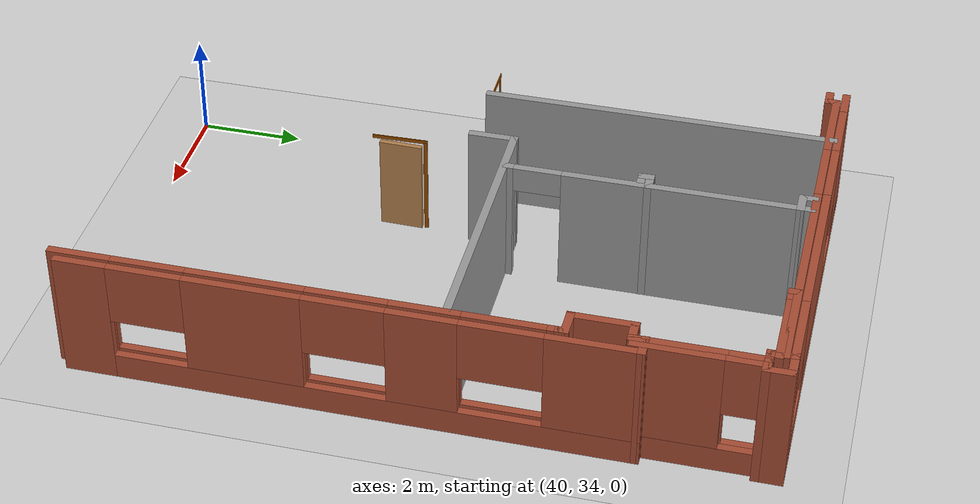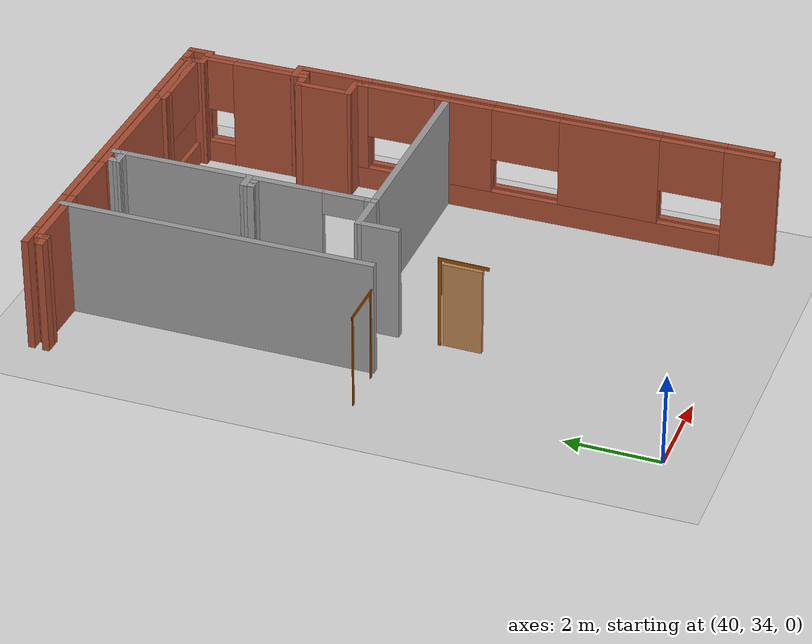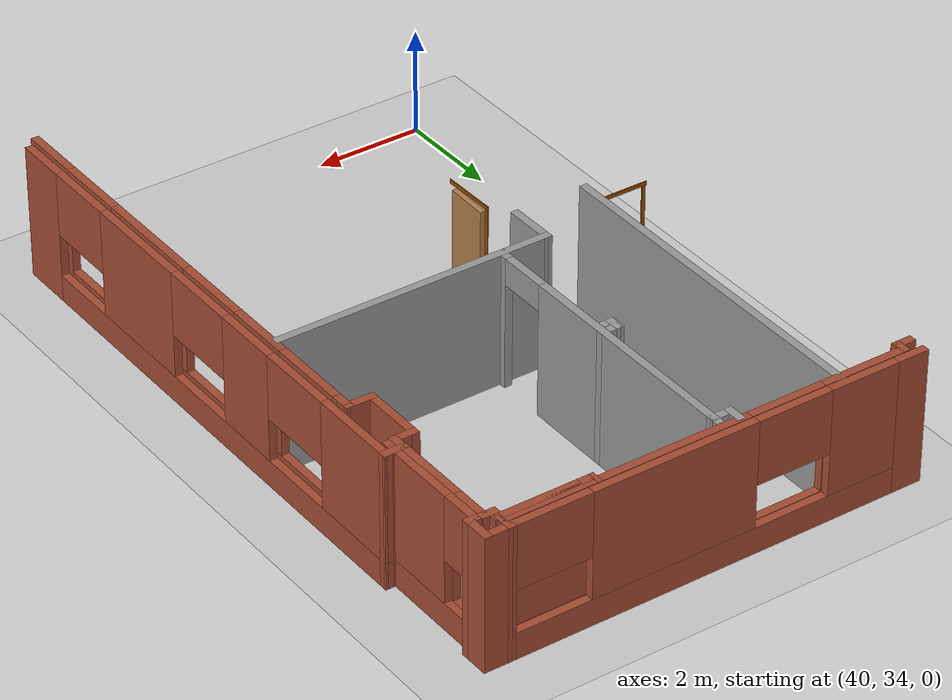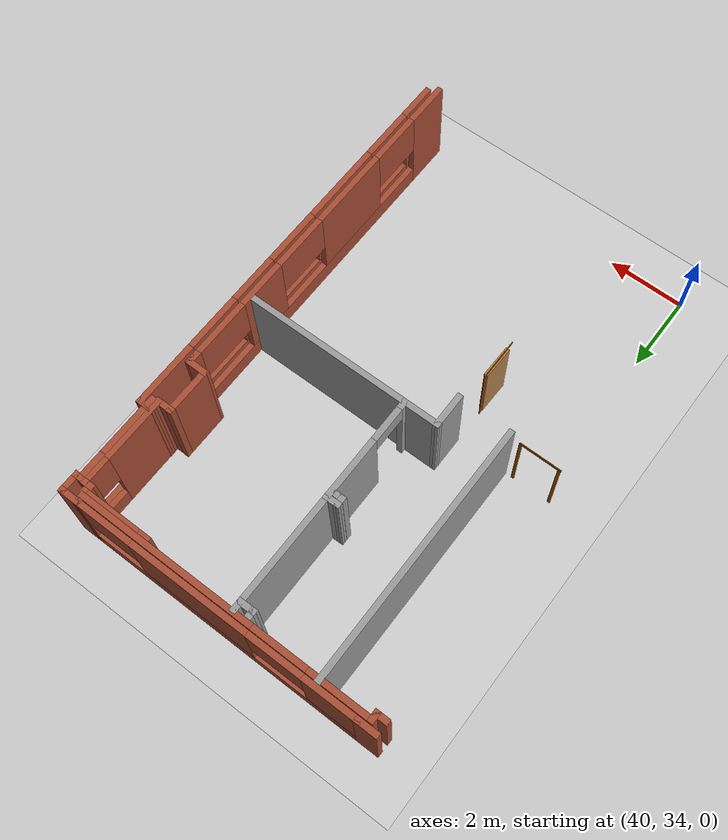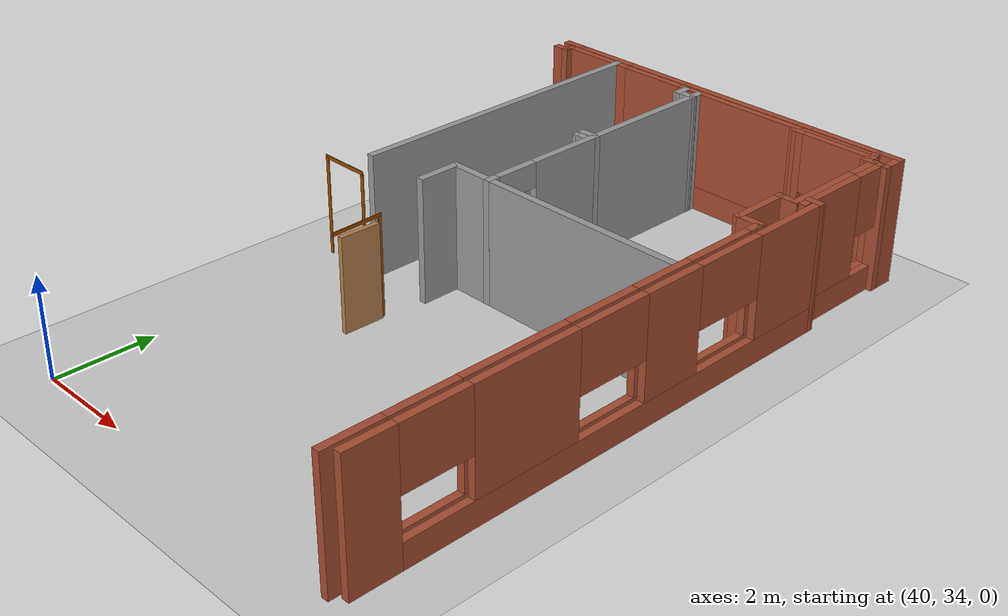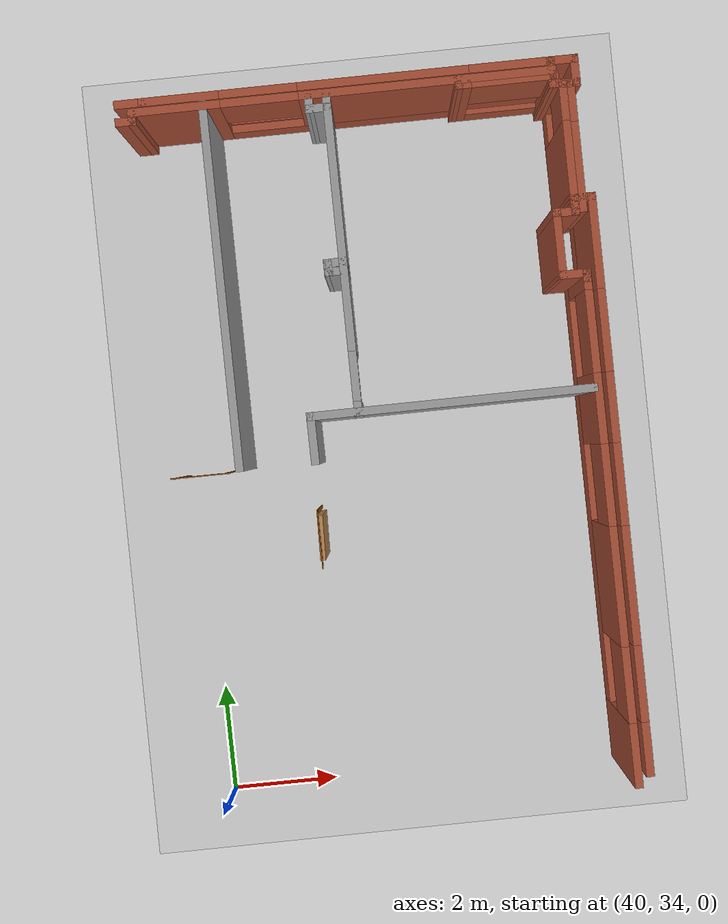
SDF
<sdf version="1.6">
 <world name="default">
  <model name="ground_plane">
   <static>1</static>
   <link name="link">
    <collision name="collision">
     <geometry><plane><normal>0 0 1</normal><size>100 100</size></plane></geometry>
     <surface><friction><ode><mu>100</mu><mu2>50</mu2></ode></friction></surface>
    </collision>
    <visual name="visual">
     <cast_shadows>0</cast_shadows>
     <geometry><plane><normal>0 0 1</normal><size>100 100</size></plane></geometry>
     <material>
      <script><uri>file://media/materials/scripts/gazebo.material</uri><name>Gazebo/Grey</name></script>
     </material>
    </visual>
   </link>
  </model>
  <model name="CVSSP">
   <pose>23.8714 24.094 0 0 -0 0</pose>
   <link name="Wall_246">
    <pose>23.6539 14.3878 0 0 -0 1.5708</pose>
    <visual name="Wall_246_Visual_0">
     <pose>-4.04048 0 1.25 0 -0 0</pose>
     <geometry><box><size>1.16905 0.15 2.5</size></box></geometry>
     <material>
      <script><uri>file://media/materials/scripts/gazebo.material</uri><name>Gazebo/Bricks</name></script>
      <ambient>1 1 1 1</ambient>
     </material>
    </visual>
    <collision name="Wall_246_Collision_0">
     <geometry><box><size>1.16905 0.15 2.5</size></box></geometry>
     <pose>-4.04048 0 1.25 0 -0 0</pose>
    </collision>
    <visual name="Wall_246_Visual_1">
     <pose>0.584524 0 0.25 0 -0 0</pose>
     <geometry><box><size>8.08095 0.15 0.5</size></box></geometry>
     <material>
      <script><uri>file://media/materials/scripts/gazebo.material</uri><name>Gazebo/Bricks</name></script>
      <ambient>1 1 1 1</ambient>
     </material>
    </visual>
    <collision name="Wall_246_Collision_1">
     <geometry><box><size>8.08095 0.15 0.5</size></box></geometry>
     <pose>0.584524 0 0.25 0 -0 0</pose>
    </collision>
    <visual name="Wall_246_Visual_2">
     <pose>-0.997265 0 1.5 0 -0 0</pose>
     <geometry><box><size>2.17318 0.15 2</size></box></geometry>
     <material>
      <script><uri>file://media/materials/scripts/gazebo.material</uri><name>Gazebo/Bricks</name></script>
      <ambient>1 1 1 1</ambient>
     </material>
    </visual>
    <collision name="Wall_246_Collision_2">
     <geometry><box><size>2.17318 0.15 2</size></box></geometry>
     <pose>-0.997265 0 1.5 0 -0 0</pose>
    </collision>
    <visual name="Wall_246_Visual_3">
     <pose>2.21429 0 1.5 0 -0 0</pose>
     <geometry><box><size>1.28036 0.15 2</size></box></geometry>
     <material>
      <script><uri>file://media/materials/scripts/gazebo.material</uri><name>Gazebo/Bricks</name></script>
      <ambient>1 1 1 1</ambient>
     </material>
    </visual>
    <collision name="Wall_246_Collision_3">
     <geometry><box><size>1.28036 0.15 2</size></box></geometry>
     <pose>2.21429 0 1.5 0 -0 0</pose>
    </collision>
    <visual name="Wall_246_Visual_4">
     <pose>4.48646 0 1.5 0 -0 0</pose>
     <geometry><box><size>0.27708 0.15 2</size></box></geometry>
     <material>
      <script><uri>file://media/materials/scripts/gazebo.material</uri><name>Gazebo/Bricks</name></script>
      <ambient>1 1 1 1</ambient>
     </material>
    </visual>
    <collision name="Wall_246_Collision_4">
     <geometry><box><size>0.27708 0.15 2</size></box></geometry>
     <pose>4.48646 0 1.5 0 -0 0</pose>
    </collision>
    <visual name="Wall_246_Visual_5">
     <pose>-2.7699 0 1.9 0 -0 0</pose>
     <geometry><box><size>1.3721 0.15 1.2</size></box></geometry>
     <material>
      <script><uri>file://media/materials/scripts/gazebo.material</uri><name>Gazebo/Bricks</name></script>
      <ambient>1 1 1 1</ambient>
     </material>
    </visual>
    <collision name="Wall_246_Collision_5">
     <geometry><box><size>1.3721 0.15 1.2</size></box></geometry>
     <pose>-2.7699 0 1.9 0 -0 0</pose>
    </collision>
    <visual name="Wall_246_Visual_6">
     <pose>0.831717 0 1.9 0 -0 0</pose>
     <geometry><box><size>1.48478 0.15 1.2</size></box></geometry>
     <material>
      <script><uri>file://media/materials/scripts/gazebo.material</uri><name>Gazebo/Bricks</name></script>
      <ambient>1 1 1 1</ambient>
     </material>
    </visual>
    <collision name="Wall_246_Collision_6">
     <geometry><box><size>1.48478 0.15 1.2</size></box></geometry>
     <pose>0.831717 0 1.9 0 -0 0</pose>
    </collision>
    <visual name="Wall_246_Visual_7">
     <pose>3.60119 0 1.9 0 -0 0</pose>
     <geometry><box><size>1.49345 0.15 1.2</size></box></geometry>
     <material>
      <script><uri>file://media/materials/scripts/gazebo.material</uri><name>Gazebo/Bricks</name></script>
      <ambient>1 1 1 1</ambient>
     </material>
    </visual>
    <collision name="Wall_246_Collision_7">
     <geometry><box><size>1.49345 0.15 1.2</size></box></geometry>
     <pose>3.60119 0 1.9 0 -0 0</pose>
    </collision>
   </link>
   <link name="Wall_248">
    <pose>23.8767 15.2054 0 0 -0 1.57026</pose>
    <visual name="Wall_248_Visual_0">
     <pose>-4.76522 0 1.25 0 -0 0</pose>
     <geometry><box><size>0.983202 0.15 2.5</size></box></geometry>
     <material>
      <script><uri>file://media/materials/scripts/gazebo.material</uri><name>Gazebo/Bricks</name></script>
      <ambient>1 1 1 1</ambient>
     </material>
    </visual>
    <collision name="Wall_248_Collision_0">
     <geometry><box><size>0.983202 0.15 2.5</size></box></geometry>
     <pose>-4.76522 0 1.25 0 -0 0</pose>
    </collision>
    <visual name="Wall_248_Visual_1">
     <pose>0.491601 0 0.25 0 -0 0</pose>
     <geometry><box><size>9.53043 0.15 0.5</size></box></geometry>
     <material>
      <script><uri>file://media/materials/scripts/gazebo.material</uri><name>Gazebo/Bricks</name></script>
      <ambient>1 1 1 1</ambient>
     </material>
    </visual>
    <collision name="Wall_248_Collision_1">
     <geometry><box><size>9.53043 0.15 0.5</size></box></geometry>
     <pose>0.491601 0 0.25 0 -0 0</pose>
    </collision>
    <visual name="Wall_248_Visual_2">
     <pose>-1.81497 0 1.5 0 -0 0</pose>
     <geometry><box><size>2.15587 0.15 2</size></box></geometry>
     <material>
      <script><uri>file://media/materials/scripts/gazebo.material</uri><name>Gazebo/Bricks</name></script>
      <ambient>1 1 1 1</ambient>
     </material>
    </visual>
    <collision name="Wall_248_Collision_2">
     <geometry><box><size>2.15587 0.15 2</size></box></geometry>
     <pose>-1.81497 0 1.5 0 -0 0</pose>
    </collision>
    <visual name="Wall_248_Visual_3">
     <pose>1.3966 0 1.5 0 -0 0</pose>
     <geometry><box><size>1.28045 0.15 2</size></box></geometry>
     <material>
      <script><uri>file://media/materials/scripts/gazebo.material</uri><name>Gazebo/Bricks</name></script>
      <ambient>1 1 1 1</ambient>
     </material>
    </visual>
    <collision name="Wall_248_Collision_3">
     <geometry><box><size>1.28045 0.15 2</size></box></geometry>
     <pose>1.3966 0 1.5 0 -0 0</pose>
    </collision>
    <visual name="Wall_248_Visual_4">
     <pose>4.39355 0 1.5 0 -0 0</pose>
     <geometry><box><size>1.72654 0.15 2</size></box></geometry>
     <material>
      <script><uri>file://media/materials/scripts/gazebo.material</uri><name>Gazebo/Bricks</name></script>
      <ambient>1 1 1 1</ambient>
     </material>
    </visual>
    <collision name="Wall_248_Collision_4">
     <geometry><box><size>1.72654 0.15 2</size></box></geometry>
     <pose>4.39355 0 1.5 0 -0 0</pose>
    </collision>
    <visual name="Wall_248_Visual_5">
     <pose>-3.58326 0 1.9 0 -0 0</pose>
     <geometry><box><size>1.38071 0.15 1.2</size></box></geometry>
     <material>
      <script><uri>file://media/materials/scripts/gazebo.material</uri><name>Gazebo/Bricks</name></script>
      <ambient>1 1 1 1</ambient>
     </material>
    </visual>
    <collision name="Wall_248_Collision_5">
     <geometry><box><size>1.38071 0.15 1.2</size></box></geometry>
     <pose>-3.58326 0 1.9 0 -0 0</pose>
    </collision>
    <visual name="Wall_248_Visual_6">
     <pose>0.009668 0 1.9 0 -0 0</pose>
     <geometry><box><size>1.49341 0.15 1.2</size></box></geometry>
     <material>
      <script><uri>file://media/materials/scripts/gazebo.material</uri><name>Gazebo/Bricks</name></script>
      <ambient>1 1 1 1</ambient>
     </material>
    </visual>
    <collision name="Wall_248_Collision_6">
     <geometry><box><size>1.49341 0.15 1.2</size></box></geometry>
     <pose>0.009668 0 1.9 0 -0 0</pose>
    </collision>
    <visual name="Wall_248_Visual_7">
     <pose>2.78355 0 1.9 0 -0 0</pose>
     <geometry><box><size>1.49345 0.15 1.2</size></box></geometry>
     <material>
      <script><uri>file://media/materials/scripts/gazebo.material</uri><name>Gazebo/Bricks</name></script>
      <ambient>1 1 1 1</ambient>
     </material>
    </visual>
    <collision name="Wall_248_Collision_7">
     <geometry><box><size>1.49345 0.15 1.2</size></box></geometry>
     <pose>2.78355 0 1.9 0 -0 0</pose>
    </collision>
   </link>
   <link name="Wall_249">
    <collision name="Wall_249_Collision">
     <geometry><box><size>0.472183 0.15 2.5</size></box></geometry>
     <pose>0 0 1.25 0 -0 0</pose>
    </collision>
    <visual name="Wall_249_Visual">
     <pose>0 0 1.25 0 -0 0</pose>
     <geometry><box><size>0.472183 0.15 2.5</size></box></geometry>
     <material>
      <script><uri>file://media/materials/scripts/gazebo.material</uri><name>Gazebo/Bricks</name></script>
      <ambient>1 1 1 1</ambient>
     </material>
    </visual>
    <pose>23.7184 20.3872 0 0 -0 3.14159</pose>
   </link>
   <link name="Wall_251">
    <collision name="Wall_251_Collision">
     <geometry><box><size>0.25 0.15 2.5</size></box></geometry>
     <pose>0 0 1.25 0 -0 0</pose>
    </collision>
    <visual name="Wall_251_Visual">
     <pose>0 0 1.25 0 -0 0</pose>
     <geometry><box><size>0.25 0.15 2.5</size></box></geometry>
     <material>
      <script><uri>file://media/materials/scripts/gazebo.material</uri><name>Gazebo/Bricks</name></script>
      <ambient>1 1 1 1</ambient>
     </material>
    </visual>
    <pose>23.6539 18.9878 0 0 -0 1.5708</pose>
   </link>
   <link name="Wall_252">
    <collision name="Wall_252_Collision">
     <geometry><box><size>0.578729 0.15 2.5</size></box></geometry>
     <pose>0 0 1.25 0 -0 0</pose>
    </collision>
    <visual name="Wall_252_Visual">
     <pose>0 0 1.25 0 -0 0</pose>
     <geometry><box><size>0.578729 0.15 2.5</size></box></geometry>
     <material>
      <script><uri>file://media/materials/scripts/gazebo.material</uri><name>Gazebo/Bricks</name></script>
      <ambient>1 1 1 1</ambient>
     </material>
    </visual>
    <pose>23.4395 19.0409 0 0 -0 3.12698</pose>
   </link>
   <link name="Wall_253">
    <collision name="Wall_253_Collision">
     <geometry><box><size>1.26972 0.15 2.5</size></box></geometry>
     <pose>0 0 1.25 0 -0 0</pose>
    </collision>
    <visual name="Wall_253_Visual">
     <pose>0 0 1.25 0 -0 0</pose>
     <geometry><box><size>1.26972 0.15 2.5</size></box></geometry>
     <material>
      <script><uri>file://media/materials/scripts/gazebo.material</uri><name>Gazebo/Bricks</name></script>
      <ambient>1 1 1 1</ambient>
     </material>
    </visual>
    <pose>23.2252 19.6039 0 0 -0 1.5708</pose>
   </link>
   <link name="Wall_254">
    <collision name="Wall_254_Collision">
     <geometry><box><size>0.488706 0.15 2.5</size></box></geometry>
     <pose>0 0 1.25 0 -0 0</pose>
    </collision>
    <visual name="Wall_254_Visual">
     <pose>0 0 1.25 0 -0 0</pose>
     <geometry><box><size>0.488706 0.15 2.5</size></box></geometry>
     <material>
      <script><uri>file://media/materials/scripts/gazebo.material</uri><name>Gazebo/Bricks</name></script>
      <ambient>1 1 1 1</ambient>
     </material>
    </visual>
    <pose>23.3945 20.1571 0 0 0 -0.000206</pose>
   </link>
   <link name="Wall_256">
    <collision name="Wall_256_Collision">
     <geometry><box><size>0.373652 0.15 2.5</size></box></geometry>
     <pose>0 0 1.25 0 -0 0</pose>
    </collision>
    <visual name="Wall_256_Visual">
     <pose>0 0 1.25 0 -0 0</pose>
     <geometry><box><size>0.373652 0.15 2.5</size></box></geometry>
     <material>
      <script><uri>file://media/materials/scripts/gazebo.material</uri><name>Gazebo/Bricks</name></script>
      <ambient>1 1 1 1</ambient>
     </material>
    </visual>
    <pose>23.5606 20.2755 0 0 -0 1.6002</pose>
   </link>
   <link name="Wall_260">
    <pose>23.5639 21.3143 0 0 -0 1.5708</pose>
    <visual name="Wall_260_Visual_0">
     <pose>-0.373491 0 1.25 0 -0 0</pose>
     <geometry><box><size>1.70433 0.15 2.5</size></box></geometry>
     <material>
      <script><uri>file://media/materials/scripts/gazebo.material</uri><name>Gazebo/Bricks</name></script>
      <ambient>1 1 1 1</ambient>
     </material>
    </visual>
    <collision name="Wall_260_Collision_0">
     <geometry><box><size>1.70433 0.15 2.5</size></box></geometry>
     <pose>-0.373491 0 1.25 0 -0 0</pose>
    </collision>
    <visual name="Wall_260_Visual_1">
     <pose>0.852167 0 0.25 0 -0 0</pose>
     <geometry><box><size>0.746982 0.15 0.5</size></box></geometry>
     <material>
      <script><uri>file://media/materials/scripts/gazebo.material</uri><name>Gazebo/Bricks</name></script>
      <ambient>1 1 1 1</ambient>
     </material>
    </visual>
    <collision name="Wall_260_Collision_1">
     <geometry><box><size>0.746982 0.15 0.5</size></box></geometry>
     <pose>0.852167 0 0.25 0 -0 0</pose>
    </collision>
    <visual name="Wall_260_Visual_2">
     <pose>1.14815 0 1.5 0 -0 0</pose>
     <geometry><box><size>0.155018 0.15 2</size></box></geometry>
     <material>
      <script><uri>file://media/materials/scripts/gazebo.material</uri><name>Gazebo/Bricks</name></script>
      <ambient>1 1 1 1</ambient>
     </material>
    </visual>
    <collision name="Wall_260_Collision_2">
     <geometry><box><size>0.155018 0.15 2</size></box></geometry>
     <pose>1.14815 0 1.5 0 -0 0</pose>
    </collision>
    <visual name="Wall_260_Visual_3">
     <pose>0.774658 0 1.9 0 -0 0</pose>
     <geometry><box><size>0.591964 0.15 1.2</size></box></geometry>
     <material>
      <script><uri>file://media/materials/scripts/gazebo.material</uri><name>Gazebo/Bricks</name></script>
      <ambient>1 1 1 1</ambient>
     </material>
    </visual>
    <collision name="Wall_260_Collision_3">
     <geometry><box><size>0.591964 0.15 1.2</size></box></geometry>
     <pose>0.774658 0 1.9 0 -0 0</pose>
    </collision>
   </link>
   <link name="Wall_261">
    <collision name="Wall_261_Collision">
     <geometry><box><size>0.320954 0.15 2.5</size></box></geometry>
     <pose>0 0 1.25 0 -0 0</pose>
    </collision>
    <visual name="Wall_261_Visual">
     <pose>0 0 1.25 0 -0 0</pose>
     <geometry><box><size>0.320954 0.15 2.5</size></box></geometry>
     <material>
      <script><uri>file://media/materials/scripts/gazebo.material</uri><name>Gazebo/Bricks</name></script>
      <ambient>1 1 1 1</ambient>
     </material>
    </visual>
    <pose>23.4784 22.465 0 0 -0 3.14159</pose>
   </link>
   <link name="Wall_262">
    <collision name="Wall_262_Collision">
     <geometry><box><size>0.564287 0.15 2.5</size></box></geometry>
     <pose>0 0 1.25 0 -0 0</pose>
    </collision>
    <visual name="Wall_262_Visual">
     <pose>0 0 1.25 0 -0 0</pose>
     <geometry><box><size>0.564287 0.15 2.5</size></box></geometry>
     <material>
      <script><uri>file://media/materials/scripts/gazebo.material</uri><name>Gazebo/Bricks</name></script>
      <ambient>1 1 1 1</ambient>
     </material>
    </visual>
    <pose>23.3897 22.6721 0 0 -0 1.58667</pose>
   </link>
   <link name="Wall_263">
    <collision name="Wall_263_Collision">
     <geometry><box><size>0.577386 0.15 2.5</size></box></geometry>
     <pose>0 0 1.25 0 -0 0</pose>
    </collision>
    <visual name="Wall_263_Visual">
     <pose>0 0 1.25 0 -0 0</pose>
     <geometry><box><size>0.577386 0.15 2.5</size></box></geometry>
     <material>
      <script><uri>file://media/materials/scripts/gazebo.material</uri><name>Gazebo/Bricks</name></script>
      <ambient>1 1 1 1</ambient>
     </material>
    </visual>
    <pose>23.6001 22.8792 0 0 -0 0</pose>
   </link>
   <link name="Wall_264">
    <collision name="Wall_264_Collision">
     <geometry><box><size>0.577386 0.15 2.5</size></box></geometry>
     <pose>0 0 1.25 0 -0 0</pose>
    </collision>
    <visual name="Wall_264_Visual">
     <pose>0 0 1.25 0 -0 0</pose>
     <geometry><box><size>0.577386 0.15 2.5</size></box></geometry>
     <material>
      <script><uri>file://media/materials/scripts/gazebo.material</uri><name>Gazebo/Bricks</name></script>
      <ambient>1 1 1 1</ambient>
     </material>
    </visual>
    <pose>23.8138 22.6655 0 0 0 -1.5708</pose>
   </link>
   <link name="Wall_265">
    <collision name="Wall_265_Collision">
     <geometry><box><size>0.262549 0.15 2.5</size></box></geometry>
     <pose>0 0 1.25 0 -0 0</pose>
    </collision>
    <visual name="Wall_265_Visual">
     <pose>0 0 1.25 0 -0 0</pose>
     <geometry><box><size>0.262549 0.15 2.5</size></box></geometry>
     <material>
      <script><uri>file://media/materials/scripts/gazebo.material</uri><name>Gazebo/Bricks</name></script>
      <ambient>1 1 1 1</ambient>
     </material>
    </visual>
    <pose>23.7579 22.4518 0 0 -0 3.14159</pose>
   </link>
   <link name="Wall_266">
    <pose>23.702 21.3275 0 0 0 -1.5708</pose>
    <visual name="Wall_266_Visual_0">
     <pose>-1.13276 0 1.25 0 -0 0</pose>
     <geometry><box><size>0.133194 0.15 2.5</size></box></geometry>
     <material>
      <script><uri>file://media/materials/scripts/gazebo.material</uri><name>Gazebo/Bricks</name></script>
      <ambient>1 1 1 1</ambient>
     </material>
    </visual>
    <collision name="Wall_266_Collision_0">
     <geometry><box><size>0.133194 0.15 2.5</size></box></geometry>
     <pose>-1.13276 0 1.25 0 -0 0</pose>
    </collision>
    <visual name="Wall_266_Visual_1">
     <pose>0.066597 0 0.25 0 -0 0</pose>
     <geometry><box><size>2.26551 0.15 0.5</size></box></geometry>
     <material>
      <script><uri>file://media/materials/scripts/gazebo.material</uri><name>Gazebo/Bricks</name></script>
      <ambient>1 1 1 1</ambient>
     </material>
    </visual>
    <collision name="Wall_266_Collision_1">
     <geometry><box><size>2.26551 0.15 0.5</size></box></geometry>
     <pose>0.066597 0 0.25 0 -0 0</pose>
    </collision>
    <visual name="Wall_266_Visual_2">
     <pose>0.384249 0 1.5 0 -0 0</pose>
     <geometry><box><size>1.63021 0.15 2</size></box></geometry>
     <material>
      <script><uri>file://media/materials/scripts/gazebo.material</uri><name>Gazebo/Bricks</name></script>
      <ambient>1 1 1 1</ambient>
     </material>
    </visual>
    <collision name="Wall_266_Collision_2">
     <geometry><box><size>1.63021 0.15 2</size></box></geometry>
     <pose>0.384249 0 1.5 0 -0 0</pose>
    </collision>
    <visual name="Wall_266_Visual_3">
     <pose>-0.748507 0 1.9 0 -0 0</pose>
     <geometry><box><size>0.635305 0.15 1.2</size></box></geometry>
     <material>
      <script><uri>file://media/materials/scripts/gazebo.material</uri><name>Gazebo/Bricks</name></script>
      <ambient>1 1 1 1</ambient>
     </material>
    </visual>
    <collision name="Wall_266_Collision_3">
     <geometry><box><size>0.635305 0.15 1.2</size></box></geometry>
     <pose>-0.748507 0 1.9 0 -0 0</pose>
    </collision>
   </link>
   <link name="Wall_268">
    <pose>19.7114 22.8792 0 0 -0 3.14159</pose>
    <visual name="Wall_268_Visual_0">
     <pose>-3.69493 0 1.25 0 -0 0</pose>
     <geometry><box><size>0.110141 0.15 2.5</size></box></geometry>
     <material>
      <script><uri>file://media/materials/scripts/gazebo.material</uri><name>Gazebo/Bricks</name></script>
      <ambient>1 1 1 1</ambient>
     </material>
    </visual>
    <collision name="Wall_268_Collision_0">
     <geometry><box><size>0.110141 0.15 2.5</size></box></geometry>
     <pose>-3.69493 0 1.25 0 -0 0</pose>
    </collision>
    <visual name="Wall_268_Visual_1">
     <pose>0.05507 0 0.25 0 -0 0</pose>
     <geometry><box><size>7.38986 0.15 0.5</size></box></geometry>
     <material>
      <script><uri>file://media/materials/scripts/gazebo.material</uri><name>Gazebo/Bricks</name></script>
      <ambient>1 1 1 1</ambient>
     </material>
    </visual>
    <collision name="Wall_268_Collision_1">
     <geometry><box><size>7.38986 0.15 0.5</size></box></geometry>
     <pose>0.05507 0 0.25 0 -0 0</pose>
    </collision>
    <visual name="Wall_268_Visual_2">
     <pose>-0.658919 0 1.5 0 -0 0</pose>
     <geometry><box><size>3.09633 0.15 2</size></box></geometry>
     <material>
      <script><uri>file://media/materials/scripts/gazebo.material</uri><name>Gazebo/Bricks</name></script>
      <ambient>1 1 1 1</ambient>
     </material>
    </visual>
    <collision name="Wall_268_Collision_2">
     <geometry><box><size>3.09633 0.15 2</size></box></geometry>
     <pose>-0.658919 0 1.5 0 -0 0</pose>
    </collision>
    <visual name="Wall_268_Visual_3">
     <pose>3.02537 0 1.5 0 -0 0</pose>
     <geometry><box><size>1.44926 0.15 2</size></box></geometry>
     <material>
      <script><uri>file://media/materials/scripts/gazebo.material</uri><name>Gazebo/Bricks</name></script>
      <ambient>1 1 1 1</ambient>
     </material>
    </visual>
    <collision name="Wall_268_Collision_3">
     <geometry><box><size>1.44926 0.15 2</size></box></geometry>
     <pose>3.02537 0 1.5 0 -0 0</pose>
    </collision>
    <visual name="Wall_268_Visual_4">
     <pose>-2.92347 0 1.9 0 -0 0</pose>
     <geometry><box><size>1.43278 0.15 1.2</size></box></geometry>
     <material>
      <script><uri>file://media/materials/scripts/gazebo.material</uri><name>Gazebo/Bricks</name></script>
      <ambient>1 1 1 1</ambient>
     </material>
    </visual>
    <collision name="Wall_268_Collision_4">
     <geometry><box><size>1.43278 0.15 1.2</size></box></geometry>
     <pose>-2.92347 0 1.9 0 -0 0</pose>
    </collision>
    <visual name="Wall_268_Visual_5">
     <pose>1.59499 0 1.9 0 -0 0</pose>
     <geometry><box><size>1.41149 0.15 1.2</size></box></geometry>
     <material>
      <script><uri>file://media/materials/scripts/gazebo.material</uri><name>Gazebo/Bricks</name></script>
      <ambient>1 1 1 1</ambient>
     </material>
    </visual>
    <collision name="Wall_268_Collision_5">
     <geometry><box><size>1.41149 0.15 1.2</size></box></geometry>
     <pose>1.59499 0 1.9 0 -0 0</pose>
    </collision>
   </link>
   <link name="Wall_269">
    <collision name="Wall_269_Collision">
     <geometry><box><size>0.587162 0.15 2.5</size></box></geometry>
     <pose>0 0 1.25 0 -0 0</pose>
    </collision>
    <visual name="Wall_269_Visual">
     <pose>0 0 1.25 0 -0 0</pose>
     <geometry><box><size>0.587162 0.15 2.5</size></box></geometry>
     <material>
      <script><uri>file://media/materials/scripts/gazebo.material</uri><name>Gazebo/Bricks</name></script>
      <ambient>1 1 1 1</ambient>
     </material>
    </visual>
    <pose>15.8178 22.8792 0 0 0 -3.14142</pose>
   </link>
   <link name="Wall_271">
    <collision name="Wall_271_Collision">
     <geometry><box><size>0.381117 0.15 2.5</size></box></geometry>
     <pose>0 0 1.25 0 -0 0</pose>
    </collision>
    <visual name="Wall_271_Visual">
     <pose>0 0 1.25 0 -0 0</pose>
     <geometry><box><size>0.381117 0.15 2.5</size></box></geometry>
     <material>
      <script><uri>file://media/materials/scripts/gazebo.material</uri><name>Gazebo/Bricks</name></script>
      <ambient>1 1 1 1</ambient>
     </material>
    </visual>
    <pose>15.7094 22.5636 0 0 -0 0</pose>
   </link>
   <link name="Wall_272">
    <collision name="Wall_272_Collision">
     <geometry><box><size>0.294654 0.15 2.5</size></box></geometry>
     <pose>0 0 1.25 0 -0 0</pose>
    </collision>
    <visual name="Wall_272_Visual">
     <pose>0 0 1.25 0 -0 0</pose>
     <geometry><box><size>0.294654 0.15 2.5</size></box></geometry>
     <material>
      <script><uri>file://media/materials/scripts/gazebo.material</uri><name>Gazebo/Bricks</name></script>
      <ambient>1 1 1 1</ambient>
     </material>
    </visual>
    <pose>15.8249 22.6359 0 0 -0 1.5708</pose>
   </link>
   <link name="Wall_273">
    <pose>19.6122 22.7148 0 0 -0 0</pose>
    <visual name="Wall_273_Visual_0">
     <pose>-3.02728 0 1.25 0 -0 0</pose>
     <geometry><box><size>1.67003 0.15 2.5</size></box></geometry>
     <material>
      <script><uri>file://media/materials/scripts/gazebo.material</uri><name>Gazebo/Bricks</name></script>
      <ambient>1 1 1 1</ambient>
     </material>
    </visual>
    <collision name="Wall_273_Collision_0">
     <geometry><box><size>1.67003 0.15 2.5</size></box></geometry>
     <pose>-3.02728 0 1.25 0 -0 0</pose>
    </collision>
    <visual name="Wall_273_Visual_1">
     <pose>0.835017 0 0.25 0 -0 0</pose>
     <geometry><box><size>6.05455 0.15 0.5</size></box></geometry>
     <material>
      <script><uri>file://media/materials/scripts/gazebo.material</uri><name>Gazebo/Bricks</name></script>
      <ambient>1 1 1 1</ambient>
     </material>
    </visual>
    <collision name="Wall_273_Collision_1">
     <geometry><box><size>6.05455 0.15 0.5</size></box></geometry>
     <pose>0.835017 0 0.25 0 -0 0</pose>
    </collision>
    <visual name="Wall_273_Visual_2">
     <pose>1.54076 0 1.5 0 -0 0</pose>
     <geometry><box><size>4.64306 0.15 2</size></box></geometry>
     <material>
      <script><uri>file://media/materials/scripts/gazebo.material</uri><name>Gazebo/Bricks</name></script>
      <ambient>1 1 1 1</ambient>
     </material>
    </visual>
    <collision name="Wall_273_Collision_2">
     <geometry><box><size>4.64306 0.15 2</size></box></geometry>
     <pose>1.54076 0 1.5 0 -0 0</pose>
    </collision>
    <visual name="Wall_273_Visual_3">
     <pose>-1.48652 0 1.9 0 -0 0</pose>
     <geometry><box><size>1.41149 0.15 1.2</size></box></geometry>
     <material>
      <script><uri>file://media/materials/scripts/gazebo.material</uri><name>Gazebo/Bricks</name></script>
      <ambient>1 1 1 1</ambient>
     </material>
    </visual>
    <collision name="Wall_273_Collision_3">
     <geometry><box><size>1.41149 0.15 1.2</size></box></geometry>
     <pose>-1.48652 0 1.9 0 -0 0</pose>
    </collision>
   </link>
   <link name="Wall_275">
    <collision name="Wall_275_Collision">
     <geometry><box><size>0.25 0.15 2.5</size></box></geometry>
     <pose>0 0 1.25 0 -0 0</pose>
    </collision>
    <visual name="Wall_275_Visual">
     <pose>0 0 1.25 0 -0 0</pose>
     <geometry><box><size>0.25 0.15 2.5</size></box></geometry>
     <material>
      <script><uri>file://media/materials/scripts/gazebo.material</uri><name>Gazebo/Bricks</name></script>
      <ambient>1 1 1 1</ambient>
     </material>
    </visual>
    <pose>21.7097 22.6648 0 0 0 -1.5708</pose>
   </link>
   <link name="Wall_276">
    <pose>22.5711 22.6155 0 0 -0 0.000797</pose>
    <visual name="Wall_276_Visual_0">
     <pose>-0.783646 0 1.25 0 -0 0</pose>
     <geometry><box><size>0.3054 0.15 2.5</size></box></geometry>
     <material>
      <script><uri>file://media/materials/scripts/gazebo.material</uri><name>Gazebo/Bricks</name></script>
      <ambient>1 1 1 1</ambient>
     </material>
    </visual>
    <collision name="Wall_276_Collision_0">
     <geometry><box><size>0.3054 0.15 2.5</size></box></geometry>
     <pose>-0.783646 0 1.25 0 -0 0</pose>
    </collision>
    <visual name="Wall_276_Visual_1">
     <pose>0.1527 0 0.25 0 -0 0</pose>
     <geometry><box><size>1.56729 0.15 0.5</size></box></geometry>
     <material>
      <script><uri>file://media/materials/scripts/gazebo.material</uri><name>Gazebo/Bricks</name></script>
      <ambient>1 1 1 1</ambient>
     </material>
    </visual>
    <collision name="Wall_276_Collision_1">
     <geometry><box><size>1.56729 0.15 0.5</size></box></geometry>
     <pose>0.1527 0 0.25 0 -0 0</pose>
    </collision>
    <visual name="Wall_276_Visual_2">
     <pose>0.860427 0 1.5 0 -0 0</pose>
     <geometry><box><size>0.15184 0.15 2</size></box></geometry>
     <material>
      <script><uri>file://media/materials/scripts/gazebo.material</uri><name>Gazebo/Bricks</name></script>
      <ambient>1 1 1 1</ambient>
     </material>
    </visual>
    <collision name="Wall_276_Collision_2">
     <geometry><box><size>0.15184 0.15 2</size></box></geometry>
     <pose>0.860427 0 1.5 0 -0 0</pose>
    </collision>
    <visual name="Wall_276_Visual_3">
     <pose>0.07678 0 1.9 0 -0 0</pose>
     <geometry><box><size>1.41545 0.15 1.2</size></box></geometry>
     <material>
      <script><uri>file://media/materials/scripts/gazebo.material</uri><name>Gazebo/Bricks</name></script>
      <ambient>1 1 1 1</ambient>
     </material>
    </visual>
    <collision name="Wall_276_Collision_3">
     <geometry><box><size>1.41545 0.15 1.2</size></box></geometry>
     <pose>0.07678 0 1.9 0 -0 0</pose>
    </collision>
   </link>
   <link name="Wall_339">
    <collision name="Wall_339_Collision">
     <geometry><box><size>6.75 0.15 2.5</size></box></geometry>
     <pose>0 0 1.25 0 -0 0</pose>
    </collision>
    <visual name="Wall_339_Visual">
     <pose>0 0 1.25 0 -0 0</pose>
     <geometry><box><size>6.75 0.15 2.5</size></box></geometry>
     <material>
      <script><uri>file://media/materials/scripts/gazebo.material</uri><name>Gazebo/Grey</name></script>
      <ambient>0.588235 0.588235 0.588235 1</ambient>
     </material>
    </visual>
    <pose>17.105 19.5007 0 0 -0 1.5708</pose>
   </link>
   <link name="Wall_342">
    <collision name="Wall_342_Collision">
     <geometry><box><size>0.94357 0.15 2.5</size></box></geometry>
     <pose>0 0 1.25 0 -0 0</pose>
    </collision>
    <visual name="Wall_342_Visual">
     <pose>0 0 1.25 0 -0 0</pose>
     <geometry><box><size>0.94357 0.15 2.5</size></box></geometry>
     <material>
      <script><uri>file://media/materials/scripts/gazebo.material</uri><name>Gazebo/Grey</name></script>
      <ambient>1 1 1 1</ambient>
     </material>
    </visual>
    <pose>18.469 16.5842 0 0 -0 1.57527</pose>
   </link>
   <link name="Wall_343">
    <collision name="Wall_343_Collision">
     <geometry><box><size>5.25 0.15 2.5</size></box></geometry>
     <pose>0 0 1.25 0 -0 0</pose>
    </collision>
    <visual name="Wall_343_Visual">
     <pose>0 0 1.25 0 -0 0</pose>
     <geometry><box><size>5.25 0.15 2.5</size></box></geometry>
     <material>
      <script><uri>file://media/materials/scripts/gazebo.material</uri><name>Gazebo/Grey</name></script>
      <ambient>0.588235 0.588235 0.588235 1</ambient>
     </material>
    </visual>
    <pose>21.0172 16.981 0 0 -0 0</pose>
   </link>
   <link name="Wall_345">
    <pose>19.3268 19.7148 0 0 -0 1.5708</pose>
    <visual name="Wall_345_Visual_0">
     <pose>-2.67544 0 1.25 0 -0 0</pose>
     <geometry><box><size>0.266868 0.15 2.5</size></box></geometry>
     <material>
      <script><uri>file://media/materials/scripts/gazebo.material</uri><name>Gazebo/Grey</name></script>
      <ambient>0.588235 0.588235 0.588235 1</ambient>
     </material>
    </visual>
    <collision name="Wall_345_Collision_0">
     <geometry><box><size>0.266868 0.15 2.5</size></box></geometry>
     <pose>-2.67544 0 1.25 0 -0 0</pose>
    </collision>
    <visual name="Wall_345_Visual_1">
     <pose>0.583434 0 1.25 0 -0 0</pose>
     <geometry><box><size>4.45088 0.15 2.5</size></box></geometry>
     <material>
      <script><uri>file://media/materials/scripts/gazebo.material</uri><name>Gazebo/Grey</name></script>
      <ambient>0.588235 0.588235 0.588235 1</ambient>
     </material>
    </visual>
    <collision name="Wall_345_Collision_1">
     <geometry><box><size>4.45088 0.15 2.5</size></box></geometry>
     <pose>0.583434 0 1.25 0 -0 0</pose>
    </collision>
    <visual name="Wall_345_Visual_2">
     <pose>-2.09201 0 2.25 0 -0 0</pose>
     <geometry><box><size>0.9 0.15 0.5</size></box></geometry>
     <material>
      <script><uri>file://media/materials/scripts/gazebo.material</uri><name>Gazebo/Grey</name></script>
      <ambient>0.588235 0.588235 0.588235 1</ambient>
     </material>
    </visual>
    <collision name="Wall_345_Collision_2">
     <geometry><box><size>0.9 0.15 0.5</size></box></geometry>
     <pose>-2.09201 0 2.25 0 -0 0</pose>
    </collision>
   </link>
   <link name="Wall_347">
    <collision name="Wall_347_Collision">
     <geometry><box><size>0.473042 0.15 2.5</size></box></geometry>
     <pose>0 0 1.25 0 -0 0</pose>
    </collision>
    <visual name="Wall_347_Visual">
     <pose>0 0 1.25 0 -0 0</pose>
     <geometry><box><size>0.473042 0.15 2.5</size></box></geometry>
     <material>
      <script><uri>file://media/materials/scripts/gazebo.material</uri><name>Gazebo/Grey</name></script>
      <ambient>1 1 1 1</ambient>
     </material>
    </visual>
    <pose>19.1653 22.4613 0 0 0 -3.13738</pose>
   </link>
   <link name="Wall_349">
    <collision name="Wall_349_Collision">
     <geometry><box><size>0.360405 0.15 2.5</size></box></geometry>
     <pose>0 0 1.25 0 -0 0</pose>
    </collision>
    <visual name="Wall_349_Visual">
     <pose>0 0 1.25 0 -0 0</pose>
     <geometry><box><size>0.360405 0.15 2.5</size></box></geometry>
     <material>
      <script><uri>file://media/materials/scripts/gazebo.material</uri><name>Gazebo/Grey</name></script>
      <ambient>1 1 1 1</ambient>
     </material>
    </visual>
    <pose>19.0038 22.5658 0 0 -0 1.5708</pose>
   </link>
   <link name="Wall_351">
    <collision name="Wall_351_Collision">
     <geometry><box><size>0.345897 0.15 2.5</size></box></geometry>
     <pose>0 0 1.25 0 -0 0</pose>
    </collision>
    <visual name="Wall_351_Visual">
     <pose>0 0 1.25 0 -0 0</pose>
     <geometry><box><size>0.345897 0.15 2.5</size></box></geometry>
     <material>
      <script><uri>file://media/materials/scripts/gazebo.material</uri><name>Gazebo/Grey</name></script>
      <ambient>1 1 1 1</ambient>
     </material>
    </visual>
    <pose>19.3264 22.5599 0 0 -0 1.57517</pose>
   </link>
   <link name="Wall_665">
    <collision name="Wall_665_Collision">
     <geometry><box><size>0.303096 0.15 2.5</size></box></geometry>
     <pose>0 0 1.25 0 -0 0</pose>
    </collision>
    <visual name="Wall_665_Visual">
     <pose>0 0 1.25 0 -0 0</pose>
     <geometry><box><size>0.303096 0.15 2.5</size></box></geometry>
     <material>
      <script><uri>file://media/materials/scripts/gazebo.material</uri><name>Gazebo/Grey</name></script>
      <ambient>1 1 1 1</ambient>
     </material>
    </visual>
    <pose>19.0523 19.6004 0 0 0 -1.52734</pose>
   </link>
   <link name="Wall_666">
    <collision name="Wall_666_Collision">
     <geometry><box><size>0.3032 0.15 2.5</size></box></geometry>
     <pose>0 0 1.25 0 -0 0</pose>
    </collision>
    <visual name="Wall_666_Visual">
     <pose>0 0 1.25 0 -0 0</pose>
     <geometry><box><size>0.3032 0.15 2.5</size></box></geometry>
     <material>
      <script><uri>file://media/materials/scripts/gazebo.material</uri><name>Gazebo/Grey</name></script>
      <ambient>1 1 1 1</ambient>
     </material>
    </visual>
    <pose>19.1255 19.5239 0 0 -0 0</pose>
   </link>
   <link name="Wall_669">
    <collision name="Wall_669_Collision">
     <geometry><box><size>0.429381 0.15 2.5</size></box></geometry>
     <pose>0 0 1.25 0 -0 0</pose>
    </collision>
    <visual name="Wall_669_Visual">
     <pose>0 0 1.25 0 -0 0</pose>
     <geometry><box><size>0.429381 0.15 2.5</size></box></geometry>
     <material>
      <script><uri>file://media/materials/scripts/gazebo.material</uri><name>Gazebo/Grey</name></script>
      <ambient>0.588235 0.588235 0.588235 1</ambient>
     </material>
    </visual>
    <pose>19.1886 19.6802 0 0 -0 0.023805</pose>
   </link>
   <static>1</static>
  </model>
  <model name="basic_ply_door_smaller">
   <link name="link">
    <pose>0 1e-06 1.00385 0 -0 0</pose>
    <inertial>
     <mass>0.5167</mass>
     <inertia>
      <ixx>0.00086117</ixx>
      <ixy>0</ixy>
      <ixz>0</ixz>
      <iyy>0.00086117</iyy>
      <iyz>0</iyz>
      <izz>0.00086117</izz>
     </inertia>
    </inertial>
    <gravity>0</gravity>
    <visual name="visual">
     <geometry><box><size>0.83 0.1 1.91</size></box></geometry>
     <material>
      <script><uri>file://media/materials/scripts/gazebo.material</uri><name>Gazebo/Wood</name></script>
      <shader type="pixel"><normal_map>__default__</normal_map></shader>
      <ambient>1 1 1 1</ambient>
      <diffuse>1 1 1 1</diffuse>
      <specular>0.2 0.2 0.2 1</specular>
      <emissive>0 0 0 1</emissive>
     </material>
    </visual>
    <collision name="collision">
     <geometry><box><size>0.83 0.1 1.91</size></box></geometry>
     <surface>
      <friction>
       <ode><mu>1</mu><mu2>1</mu2><fdir1>0 0 0</fdir1><slip1>0</slip1><slip2>0</slip2></ode>
       <torsional>
        <coefficient>1</coefficient>
        <patch_radius>0</patch_radius>
        <surface_radius>0.01</surface_radius>
        <use_patch_radius>0</use_patch_radius>
        <ode><slip>0</slip></ode>
       </torsional>
      </friction>
      <bounce><restitution_coefficient>0</restitution_coefficient><threshold>1e+06</threshold></bounce>
      <contact>
       <collide_without_contact>0</collide_without_contact>
       <collide_without_contact_bitmask>1</collide_without_contact_bitmask>
       <collide_bitmask>1</collide_bitmask>
       <ode>
        <soft_cfm>0</soft_cfm>
        <soft_erp>0.2</soft_erp>
        <kp>100000</kp>
        <kd>100</kd>
        <max_vel>100</max_vel>
        <min_depth>0.001</min_depth>
       </ode>
       <bullet>
        <split_impulse>1</split_impulse>
        <split_impulse_penetration_threshold>-0.01</split_impulse_penetration_threshold>
        <soft_cfm>0</soft_cfm>
        <soft_erp>0.2</soft_erp>
        <kp>100000</kp>
        <kd>100</kd>
       </bullet>
      </contact>
     </surface>
    </collision>
   </link>
   <static>1</static>
   <pose>42.2836 38.8513 -0.001108 0.000587 0.002065 1.54877</pose>
  </model>
  <model name="oak_frame_0_clone_clone_10">
   <link name="link">
    <inertial>
     <mass>1</mass>
     <inertia>
      <ixx>0.166667</ixx>
      <ixy>0</ixy>
      <ixz>0</ixz>
      <iyy>0.166667</iyy>
      <iyz>0</iyz>
      <izz>0.166667</izz>
     </inertia>
    </inertial>
    <visual name="visual">
     <geometry><box><size>0.018685 0.076446 2.026</size></box></geometry>
     <material>
      <script><name>Gazebo/Grey</name><uri>file://media/materials/scripts/gazebo.material</uri></script>
      <shader type="pixel"><normal_map>__default__</normal_map></shader>
      <diffuse>0.58 0.29 0 0</diffuse>
      <ambient>0.58 0.29 0 1</ambient>
      <specular>0.01 0.01 0.01 1</specular>
      <emissive>0 0 0 1</emissive>
     </material>
    </visual>
    <collision name="collision">
     <geometry><box><size>0.018685 0.076446 2.026</size></box></geometry>
     <surface>
      <friction>
       <ode><mu>1</mu><mu2>1</mu2><fdir1>0 0 0</fdir1><slip1>0</slip1><slip2>0</slip2></ode>
       <torsional>
        <coefficient>1</coefficient>
        <patch_radius>0</patch_radius>
        <surface_radius>0</surface_radius>
        <use_patch_radius>1</use_patch_radius>
        <ode><slip>0</slip></ode>
       </torsional>
      </friction>
      <bounce><restitution_coefficient>0</restitution_coefficient><threshold>1e+06</threshold></bounce>
      <contact>
       <collide_without_contact>0</collide_without_contact>
       <collide_without_contact_bitmask>1</collide_without_contact_bitmask>
       <collide_bitmask>1</collide_bitmask>
       <ode>
        <soft_cfm>0</soft_cfm>
        <soft_erp>0.2</soft_erp>
        <kp>1e+13</kp>
        <kd>1</kd>
        <max_vel>0.01</max_vel>
        <min_depth>0</min_depth>
       </ode>
       <bullet>
        <split_impulse>1</split_impulse>
        <split_impulse_penetration_threshold>-0.01</split_impulse_penetration_threshold>
        <soft_cfm>0</soft_cfm>
        <soft_erp>0.2</soft_erp>
        <kp>1e+13</kp>
        <kd>1</kd>
       </bullet>
      </contact>
     </surface>
    </collision>
   </link>
   <static>1</static>
   <pose>42.2641 39.3371 1.03242 0 -0 0</pose>
  </model>
  <model name="oak_frame_0_clone_0_clone_7">
   <link name="link">
    <inertial>
     <mass>1</mass>
     <inertia>
      <ixx>0.166667</ixx>
      <ixy>0</ixy>
      <ixz>0</ixz>
      <iyy>0.166667</iyy>
      <iyz>0</iyz>
      <izz>0.166667</izz>
     </inertia>
    </inertial>
    <visual name="visual">
     <geometry><box><size>0.018685 0.076446 1.08038</size></box></geometry>
     <material>
      <script><name>Gazebo/Grey</name><uri>file://media/materials/scripts/gazebo.material</uri></script>
      <shader type="pixel"><normal_map>__default__</normal_map></shader>
      <diffuse>0.58 0.29 0 0</diffuse>
      <ambient>0.58 0.29 0 1</ambient>
      <specular>0.01 0.01 0.01 1</specular>
      <emissive>0 0 0 1</emissive>
     </material>
    </visual>
    <collision name="collision">
     <geometry><box><size>0.018685 0.076446 1.08038</size></box></geometry>
     <surface>
      <friction>
       <ode><mu>1</mu><mu2>1</mu2><fdir1>0 0 0</fdir1><slip1>0</slip1><slip2>0</slip2></ode>
       <torsional>
        <coefficient>1</coefficient>
        <patch_radius>0</patch_radius>
        <surface_radius>0</surface_radius>
        <use_patch_radius>1</use_patch_radius>
        <ode><slip>0</slip></ode>
       </torsional>
      </friction>
      <bounce><restitution_coefficient>0</restitution_coefficient><threshold>1e+06</threshold></bounce>
      <contact>
       <collide_without_contact>0</collide_without_contact>
       <collide_without_contact_bitmask>1</collide_without_contact_bitmask>
       <collide_bitmask>1</collide_bitmask>
       <ode>
        <soft_cfm>0</soft_cfm>
        <soft_erp>0.2</soft_erp>
        <kp>1e+13</kp>
        <kd>1</kd>
        <max_vel>0.01</max_vel>
        <min_depth>0</min_depth>
       </ode>
       <bullet>
        <split_impulse>1</split_impulse>
        <split_impulse_penetration_threshold>-0.01</split_impulse_penetration_threshold>
        <soft_cfm>0</soft_cfm>
        <soft_erp>0.2</soft_erp>
        <kp>1e+13</kp>
        <kd>1</kd>
       </bullet>
      </contact>
     </surface>
    </collision>
   </link>
   <static>1</static>
   <pose>42.2637 38.8395 2.05002 -1.55236 0 0</pose>
  </model>
  <model name="oak_frame_0_clone_clone_10_clone_clone">
   <link name="link">
    <inertial>
     <mass>1</mass>
     <inertia>
      <ixx>0.166667</ixx>
      <ixy>0</ixy>
      <ixz>0</ixz>
      <iyy>0.166667</iyy>
      <iyz>0</iyz>
      <izz>0.166667</izz>
     </inertia>
    </inertial>
    <visual name="visual">
     <geometry><box><size>0.018685 0.076446 2.026</size></box></geometry>
     <material>
      <script><name>Gazebo/Grey</name><uri>file://media/materials/scripts/gazebo.material</uri></script>
      <shader type="pixel"><normal_map>__default__</normal_map></shader>
      <diffuse>0.58 0.29 0 0</diffuse>
      <ambient>0.58 0.29 0 1</ambient>
      <specular>0.01 0.01 0.01 1</specular>
      <emissive>0 0 0 1</emissive>
     </material>
    </visual>
    <collision name="collision">
     <geometry><box><size>0.018685 0.076446 2.026</size></box></geometry>
     <surface>
      <friction>
       <ode><mu>1</mu><mu2>1</mu2><fdir1>0 0 0</fdir1><slip1>0</slip1><slip2>0</slip2></ode>
       <torsional>
        <coefficient>1</coefficient>
        <patch_radius>0</patch_radius>
        <surface_radius>0</surface_radius>
        <use_patch_radius>1</use_patch_radius>
        <ode><slip>0</slip></ode>
       </torsional>
      </friction>
      <bounce><restitution_coefficient>0</restitution_coefficient><threshold>1e+06</threshold></bounce>
      <contact>
       <collide_without_contact>0</collide_without_contact>
       <collide_without_contact_bitmask>1</collide_without_contact_bitmask>
       <collide_bitmask>1</collide_bitmask>
       <ode>
        <soft_cfm>0</soft_cfm>
        <soft_erp>0.2</soft_erp>
        <kp>1e+13</kp>
        <kd>1</kd>
        <max_vel>0.01</max_vel>
        <min_depth>0</min_depth>
       </ode>
       <bullet>
        <split_impulse>1</split_impulse>
        <split_impulse_penetration_threshold>-0.01</split_impulse_penetration_threshold>
        <soft_cfm>0</soft_cfm>
        <soft_erp>0.2</soft_erp>
        <kp>1e+13</kp>
        <kd>1</kd>
       </bullet>
      </contact>
     </surface>
    </collision>
   </link>
   <static>1</static>
   <pose>40.7191 40.215 1.03242 0 0 -1.56774</pose>
  </model>
  <model name="oak_frame_0_clone_0_clone_8_clone_0_clone_0_clone_clone">
   <link name="link">
    <inertial>
     <mass>1</mass>
     <inertia>
      <ixx>0.166667</ixx>
      <ixy>0</ixy>
      <ixz>0</ixz>
      <iyy>0.166667</iyy>
      <iyz>0</iyz>
      <izz>0.166667</izz>
     </inertia>
    </inertial>
    <visual name="visual">
     <geometry><box><size>0.018685 0.076446 1.08038</size></box></geometry>
     <material>
      <script><name>Gazebo/Grey</name><uri>file://media/materials/scripts/gazebo.material</uri></script>
      <shader type="pixel"><normal_map>__default__</normal_map></shader>
      <diffuse>0.58 0.29 0 0</diffuse>
      <ambient>0.58 0.29 0 1</ambient>
      <specular>0.01 0.01 0.01 1</specular>
      <emissive>0 0 0 1</emissive>
     </material>
    </visual>
    <collision name="collision">
     <geometry><box><size>0.018685 0.076446 1.08038</size></box></geometry>
     <surface>
      <friction>
       <ode><mu>1</mu><mu2>1</mu2><fdir1>0 0 0</fdir1><slip1>0</slip1><slip2>0</slip2></ode>
       <torsional>
        <coefficient>1</coefficient>
        <patch_radius>0</patch_radius>
        <surface_radius>0</surface_radius>
        <use_patch_radius>1</use_patch_radius>
        <ode><slip>0</slip></ode>
       </torsional>
      </friction>
      <bounce><restitution_coefficient>0</restitution_coefficient><threshold>1e+06</threshold></bounce>
      <contact>
       <collide_without_contact>0</collide_without_contact>
       <collide_without_contact_bitmask>1</collide_without_contact_bitmask>
       <collide_bitmask>1</collide_bitmask>
       <ode>
        <soft_cfm>0</soft_cfm>
        <soft_erp>0.2</soft_erp>
        <kp>1e+13</kp>
        <kd>1</kd>
        <max_vel>0.01</max_vel>
        <min_depth>0</min_depth>
       </ode>
       <bullet>
        <split_impulse>1</split_impulse>
        <split_impulse_penetration_threshold>-0.01</split_impulse_penetration_threshold>
        <soft_cfm>0</soft_cfm>
        <soft_erp>0.2</soft_erp>
        <kp>1e+13</kp>
        <kd>1</kd>
       </bullet>
      </contact>
     </surface>
    </collision>
   </link>
   <static>1</static>
   <pose>40.2105 40.2096 2.05052 -1.57088 0.018437 -1.57501</pose>
  </model>
  <model name="oak_frame_0_clone_clone_10_clone_clone_clone">
   <link name="link">
    <inertial>
     <mass>1</mass>
     <inertia>
      <ixx>0.166667</ixx>
      <ixy>0</ixy>
      <ixz>0</ixz>
      <iyy>0.166667</iyy>
      <iyz>0</iyz>
      <izz>0.166667</izz>
     </inertia>
    </inertial>
    <visual name="visual">
     <geometry><box><size>0.018685 0.076446 2.026</size></box></geometry>
     <material>
      <script><name>Gazebo/Grey</name><uri>file://media/materials/scripts/gazebo.material</uri></script>
      <shader type="pixel"><normal_map>__default__</normal_map></shader>
      <diffuse>0.58 0.29 0 0</diffuse>
      <ambient>0.58 0.29 0 1</ambient>
      <specular>0.01 0.01 0.01 1</specular>
      <emissive>0 0 0 1</emissive>
     </material>
    </visual>
    <collision name="collision">
     <geometry><box><size>0.018685 0.076446 2.026</size></box></geometry>
     <surface>
      <friction>
       <ode><mu>1</mu><mu2>1</mu2><fdir1>0 0 0</fdir1><slip1>0</slip1><slip2>0</slip2></ode>
       <torsional>
        <coefficient>1</coefficient>
        <patch_radius>0</patch_radius>
        <surface_radius>0</surface_radius>
        <use_patch_radius>1</use_patch_radius>
        <ode><slip>0</slip></ode>
       </torsional>
      </friction>
      <bounce><restitution_coefficient>0</restitution_coefficient><threshold>1e+06</threshold></bounce>
      <contact>
       <collide_without_contact>0</collide_without_contact>
       <collide_without_contact_bitmask>1</collide_without_contact_bitmask>
       <collide_bitmask>1</collide_bitmask>
       <ode>
        <soft_cfm>0</soft_cfm>
        <soft_erp>0.2</soft_erp>
        <kp>1e+13</kp>
        <kd>1</kd>
        <max_vel>0.01</max_vel>
        <min_depth>0</min_depth>
       </ode>
       <bullet>
        <split_impulse>1</split_impulse>
        <split_impulse_penetration_threshold>-0.01</split_impulse_penetration_threshold>
        <soft_cfm>0</soft_cfm>
        <soft_erp>0.2</soft_erp>
        <kp>1e+13</kp>
        <kd>1</kd>
       </bullet>
      </contact>
     </surface>
    </collision>
   </link>
   <static>1</static>
   <pose>39.724 40.2066 1.03242 0 0 -1.56774</pose>
  </model>
 </world>
</sdf>
